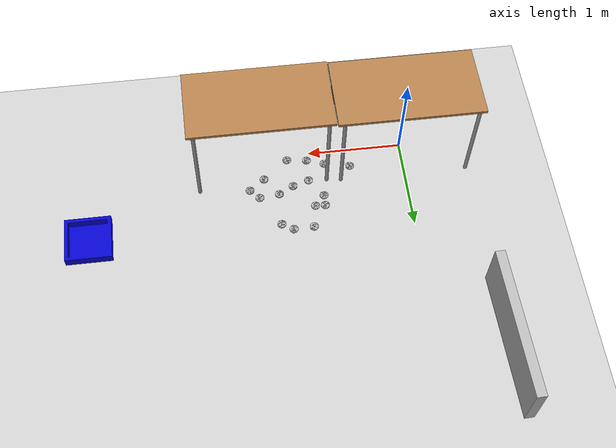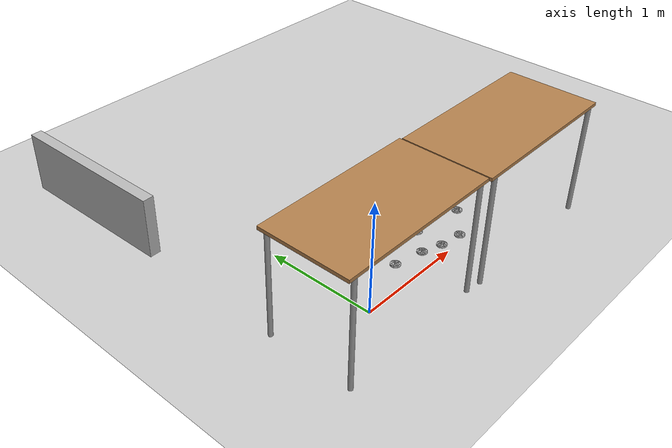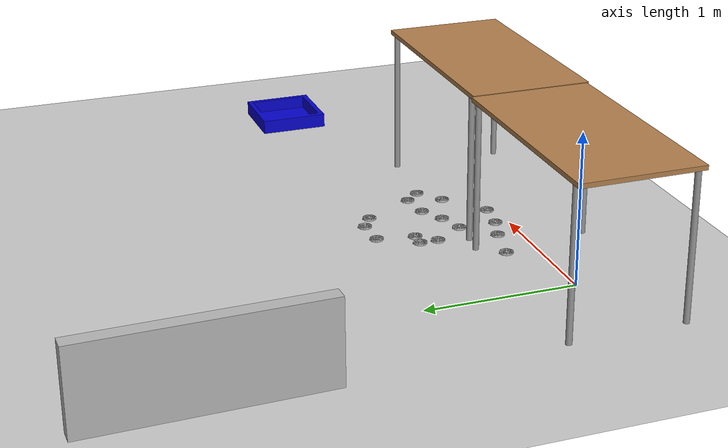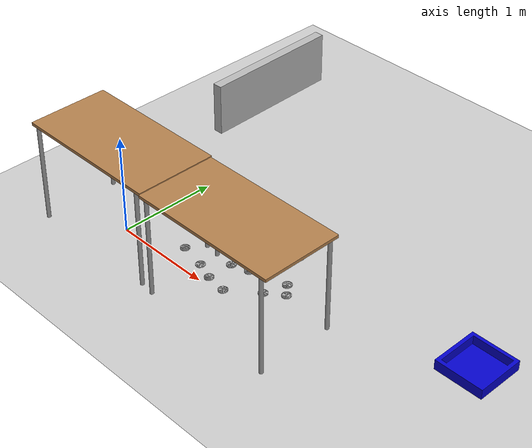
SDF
<sdf version="1.7">
 <world name="default">
  <model name="ground_plane">
   <static>1</static>
   <link name="link">
    <collision name="collision">
     <geometry><plane><normal>0 0 1</normal><size>100 100</size></plane></geometry>
     <surface>
      <contact><collide_bitmask>65535</collide_bitmask></contact>
      <friction><ode><mu>100</mu><mu2>50</mu2></ode></friction>
     </surface>
    </collision>
    <visual name="visual">
     <cast_shadows>0</cast_shadows>
     <geometry><plane><normal>0 0 1</normal><size>100 100</size></plane></geometry>
     <material>
      <script><uri>file://media/materials/scripts/gazebo.material</uri><name>Gazebo/Grey</name></script>
     </material>
    </visual>
   </link>
  </model>
  <model name="object_box">
   <pose>3.38607 0.850822 0 0 -0 0</pose>
   <static>1</static>
   <link name="object_box">
    <inertial>
     <mass>0.2</mass>
     <inertia><ixx>0.0005</ixx><ixy>0</ixy><ixz>0</ixz><iyy>0.0005</iyy><iyz>0</iyz><izz>0.0005</izz></inertia>
    </inertial>
    <collision name="collision">
     <geometry><mesh><uri>model://object_box/meshed/object_box_kai_kai.dae</uri></mesh></geometry>
    </collision>
    <visual name="visual">
     <geometry><mesh><uri>model://object_box/meshed/object_box_kai_kai.dae</uri></mesh></geometry>
    </visual>
   </link>
  </model>
  <model name="HV8_0">
   <pose>1.24148 0.059611 -3e-06 -0.000159 7.4e-05 0.001746</pose>
   <static>0</static>
   <link name="HV8">
    <inertial>
     <mass>0.05</mass>
     <inertia><ixx>0.0002</ixx><ixy>0</ixy><ixz>0</ixz><iyy>0.0002</iyy><iyz>0</iyz><izz>0.0002</izz></inertia>
    </inertial>
    <collision name="collishin">
     <geometry><mesh><uri>model://HV8/meshes/HV8_1.stl</uri></mesh></geometry>
    </collision>
    <visual name="visual"><geometry><mesh><uri>model://HV8/meshes/HV8_1.stl</uri></mesh></geometry></visual>
   </link>
  </model>
  <model name="HV8_3">
   <pose>1.03096 0.088448 -3e-06 -0.000159 7.4e-05 0.001744</pose>
   <static>0</static>
   <link name="HV8">
    <inertial>
     <mass>0.05</mass>
     <inertia><ixx>0.0002</ixx><ixy>0</ixy><ixz>0</ixz><iyy>0.0002</iyy><iyz>0</iyz><izz>0.0002</izz></inertia>
    </inertial>
    <collision name="collishin">
     <geometry><mesh><uri>model://HV8/meshes/HV8_1.stl</uri></mesh></geometry>
    </collision>
    <visual name="visual"><geometry><mesh><uri>model://HV8/meshes/HV8_1.stl</uri></mesh></geometry></visual>
   </link>
  </model>
  <model name="HV8_4">
   <pose>1.03894 0.34577 -3e-06 -0.000159 7.4e-05 0.001743</pose>
   <static>0</static>
   <link name="HV8">
    <inertial>
     <mass>0.05</mass>
     <inertia><ixx>0.0002</ixx><ixy>0</ixy><ixz>0</ixz><iyy>0.0002</iyy><iyz>0</iyz><izz>0.0002</izz></inertia>
    </inertial>
    <collision name="collishin">
     <geometry><mesh><uri>model://HV8/meshes/HV8_1.stl</uri></mesh></geometry>
    </collision>
    <visual name="visual"><geometry><mesh><uri>model://HV8/meshes/HV8_1.stl</uri></mesh></geometry></visual>
   </link>
  </model>
  <model name="HV8_5">
   <pose>1.21294 0.399554 -1.8e-05 0.000274 0.000329 0.001908</pose>
   <static>0</static>
   <link name="HV8">
    <inertial>
     <mass>0.05</mass>
     <inertia><ixx>0.0002</ixx><ixy>0</ixy><ixz>0</ixz><iyy>0.0002</iyy><iyz>0</iyz><izz>0.0002</izz></inertia>
    </inertial>
    <collision name="collishin">
     <geometry><mesh><uri>model://HV8/meshes/HV8_1.stl</uri></mesh></geometry>
    </collision>
    <visual name="visual"><geometry><mesh><uri>model://HV8/meshes/HV8_1.stl</uri></mesh></geometry></visual>
   </link>
  </model>
  <model name="HV8_6">
   <pose>1.00599 0.67169 -3e-06 -0.000159 7.4e-05 0.001906</pose>
   <static>0</static>
   <link name="HV8">
    <inertial>
     <mass>0.05</mass>
     <inertia><ixx>0.0002</ixx><ixy>0</ixy><ixz>0</ixz><iyy>0.0002</iyy><iyz>0</iyz><izz>0.0002</izz></inertia>
    </inertial>
    <collision name="collishin">
     <geometry><mesh><uri>model://HV8/meshes/HV8_1.stl</uri></mesh></geometry>
    </collision>
    <visual name="visual"><geometry><mesh><uri>model://HV8/meshes/HV8_1.stl</uri></mesh></geometry></visual>
   </link>
  </model>
  <model name="HV8_18">
   <pose>1.51384 0.279969 3e-06 -0.000164 -2.7e-05 0.001736</pose>
   <static>0</static>
   <link name="HV8">
    <inertial>
     <mass>0.05</mass>
     <inertia><ixx>0.0002</ixx><ixy>0</ixy><ixz>0</ixz><iyy>0.0002</iyy><iyz>0</iyz><izz>0.0002</izz></inertia>
    </inertial>
    <collision name="collishin">
     <geometry><mesh><uri>model://HV8/meshes/HV8_1.stl</uri></mesh></geometry>
    </collision>
    <visual name="visual"><geometry><mesh><uri>model://HV8/meshes/HV8_1.stl</uri></mesh></geometry></visual>
   </link>
  </model>
  <model name="HV8_19">
   <pose>1.38533 0.856674 -1.8e-05 0.000274 0.000329 0.001735</pose>
   <static>0</static>
   <link name="HV8">
    <inertial>
     <mass>0.05</mass>
     <inertia><ixx>0.0002</ixx><ixy>0</ixy><ixz>0</ixz><iyy>0.0002</iyy><iyz>0</iyz><izz>0.0002</izz></inertia>
    </inertial>
    <collision name="collishin">
     <geometry><mesh><uri>model://HV8/meshes/HV8_1.stl</uri></mesh></geometry>
    </collision>
    <visual name="visual"><geometry><mesh><uri>model://HV8/meshes/HV8_1.stl</uri></mesh></geometry></visual>
   </link>
  </model>
  <model name="HV8_20">
   <pose>0.899012 0.552527 -1.8e-05 0.000274 0.000329 0.001735</pose>
   <static>0</static>
   <link name="HV8">
    <inertial>
     <mass>0.05</mass>
     <inertia><ixx>0.0002</ixx><ixy>0</ixy><ixz>0</ixz><iyy>0.0002</iyy><iyz>0</iyz><izz>0.0002</izz></inertia>
    </inertial>
    <collision name="collishin">
     <geometry><mesh><uri>model://HV8/meshes/HV8_1.stl</uri></mesh></geometry>
    </collision>
    <visual name="visual"><geometry><mesh><uri>model://HV8/meshes/HV8_1.stl</uri></mesh></geometry></visual>
   </link>
  </model>
  <model name="HV8_21">
   <pose>0.901833 0.675184 -1.8e-05 0.000274 0.000329 0.001734</pose>
   <static>0</static>
   <link name="HV8">
    <inertial>
     <mass>0.05</mass>
     <inertia><ixx>0.0002</ixx><ixy>0</ixy><ixz>0</ixz><iyy>0.0002</iyy><iyz>0</iyz><izz>0.0002</izz></inertia>
    </inertial>
    <collision name="collishin">
     <geometry><mesh><uri>model://HV8/meshes/HV8_1.stl</uri></mesh></geometry>
    </collision>
    <visual name="visual"><geometry><mesh><uri>model://HV8/meshes/HV8_1.stl</uri></mesh></geometry></visual>
   </link>
  </model>
  <model name="HV8_22">
   <pose>1.05292 0.921952 3e-06 -0.000164 -2.7e-05 0.001734</pose>
   <static>0</static>
   <link name="HV8">
    <inertial>
     <mass>0.05</mass>
     <inertia><ixx>0.0002</ixx><ixy>0</ixy><ixz>0</ixz><iyy>0.0002</iyy><iyz>0</iyz><izz>0.0002</izz></inertia>
    </inertial>
    <collision name="collishin">
     <geometry><mesh><uri>model://HV8/meshes/HV8_1.stl</uri></mesh></geometry>
    </collision>
    <visual name="visual"><geometry><mesh><uri>model://HV8/meshes/HV8_1.stl</uri></mesh></geometry></visual>
   </link>
  </model>
  <model name="HV8_23">
   <pose>1.37036 0.483756 -3e-06 -0.000159 7.4e-05 0.002295</pose>
   <static>0</static>
   <link name="HV8">
    <inertial>
     <mass>0.05</mass>
     <inertia><ixx>0.0002</ixx><ixy>0</ixy><ixz>0</ixz><iyy>0.0002</iyy><iyz>0</iyz><izz>0.0002</izz></inertia>
    </inertial>
    <collision name="collishin">
     <geometry><mesh><uri>model://HV8/meshes/HV8_1.stl</uri></mesh></geometry>
    </collision>
    <visual name="visual"><geometry><mesh><uri>model://HV8/meshes/HV8_1.stl</uri></mesh></geometry></visual>
   </link>
  </model>
  <model name="HV8_24">
   <pose>1.67627 0.403834 -1.8e-05 0.000274 0.000329 0.001734</pose>
   <static>0</static>
   <link name="HV8">
    <inertial>
     <mass>0.05</mass>
     <inertia><ixx>0.0002</ixx><ixy>0</ixy><ixz>0</ixz><iyy>0.0002</iyy><iyz>0</iyz><izz>0.0002</izz></inertia>
    </inertial>
    <collision name="collishin">
     <geometry><mesh><uri>model://HV8/meshes/HV8_1.stl</uri></mesh></geometry>
    </collision>
    <visual name="visual"><geometry><mesh><uri>model://HV8/meshes/HV8_1.stl</uri></mesh></geometry></visual>
   </link>
  </model>
  <model name="HV8_25">
   <pose>1.58137 0.507516 -1.8e-05 0.000274 0.000329 0.001735</pose>
   <static>0</static>
   <link name="HV8">
    <inertial>
     <mass>0.05</mass>
     <inertia><ixx>0.0002</ixx><ixy>0</ixy><ixz>0</ixz><iyy>0.0002</iyy><iyz>0</iyz><izz>0.0002</izz></inertia>
    </inertial>
    <collision name="collishin">
     <geometry><mesh><uri>model://HV8/meshes/HV8_1.stl</uri></mesh></geometry>
    </collision>
    <visual name="visual"><geometry><mesh><uri>model://HV8/meshes/HV8_1.stl</uri></mesh></geometry></visual>
   </link>
  </model>
  <model name="HV8_29">
   <pose>0.845999 0.151459 -3e-06 -0.000159 7.4e-05 0.001733</pose>
   <static>0</static>
   <link name="HV8">
    <inertial>
     <mass>0.05</mass>
     <inertia><ixx>0.0002</ixx><ixy>0</ixy><ixz>0</ixz><iyy>0.0002</iyy><iyz>0</iyz><izz>0.0002</izz></inertia>
    </inertial>
    <collision name="collishin">
     <geometry><mesh><uri>model://HV8/meshes/HV8_1.stl</uri></mesh></geometry>
    </collision>
    <visual name="visual"><geometry><mesh><uri>model://HV8/meshes/HV8_1.stl</uri></mesh></geometry></visual>
   </link>
  </model>
  <model name="HV8_30">
   <pose>0.573048 0.210114 3e-06 -0.000164 -2.7e-05 0.001735</pose>
   <static>0</static>
   <link name="HV8">
    <inertial>
     <mass>0.05</mass>
     <inertia><ixx>0.0002</ixx><ixy>0</ixy><ixz>0</ixz><iyy>0.0002</iyy><iyz>0</iyz><izz>0.0002</izz></inertia>
    </inertial>
    <collision name="collishin">
     <geometry><mesh><uri>model://HV8/meshes/HV8_1.stl</uri></mesh></geometry>
    </collision>
    <visual name="visual"><geometry><mesh><uri>model://HV8/meshes/HV8_1.stl</uri></mesh></geometry></visual>
   </link>
  </model>
  <model name="HV8_31">
   <pose>1.26634 0.929085 -1.8e-05 0.000274 0.000329 0.001738</pose>
   <static>0</static>
   <link name="HV8">
    <inertial>
     <mass>0.05</mass>
     <inertia><ixx>0.0002</ixx><ixy>0</ixy><ixz>0</ixz><iyy>0.0002</iyy><iyz>0</iyz><izz>0.0002</izz></inertia>
    </inertial>
    <collision name="collishin">
     <geometry><mesh><uri>model://HV8/meshes/HV8_1.stl</uri></mesh></geometry>
    </collision>
    <visual name="visual"><geometry><mesh><uri>model://HV8/meshes/HV8_1.stl</uri></mesh></geometry></visual>
   </link>
  </model>
  <model name="t_pipe">
   <pose>-0.281011 0.161841 0.998563 0 -0 0</pose>
   <static>1</static>
   <link name="t_pipe">
    <inertial>
     <mass>0.2</mass>
     <inertia><ixx>0.0005</ixx><ixy>0</ixy><ixz>0</ixz><iyy>0.0005</iyy><iyz>0</iyz><izz>0.0005</izz></inertia>
    </inertial>
    <collision name="collishin">
     <geometry><mesh><uri>model://t_pipe/meshes/t_pipe_1.stl</uri></mesh></geometry>
    </collision>
    <visual name="visual"><geometry><mesh><uri>model://t_pipe/meshes/t_pipe_1.stl</uri></mesh></geometry></visual>
   </link>
  </model>
  <model name="table">
   <static>1</static>
   <link name="link">
    <collision name="surface">
     <pose>0 0 1 0 -0 0</pose>
     <geometry><box><size>1.5 0.8 0.03</size></box></geometry>
     <surface><friction><ode><mu>0.6</mu><mu2>0.6</mu2></ode></friction></surface>
    </collision>
    <visual name="visual1">
     <pose>0 0 1 0 -0 0</pose>
     <geometry><box><size>1.5 0.8 0.03</size></box></geometry>
     <material>
      <script><uri>file://media/materials/scripts/gazebo.material</uri><name>Gazebo/Wood</name></script>
     </material>
    </visual>
    <collision name="front_left_leg">
     <pose>0.68 0.38 0.5 0 -0 0</pose>
     <geometry><cylinder><radius>0.02</radius><length>1</length></cylinder></geometry>
    </collision>
    <visual name="front_left_leg">
     <pose>0.68 0.38 0.5 0 -0 0</pose>
     <geometry><cylinder><radius>0.02</radius><length>1</length></cylinder></geometry>
     <material>
      <script><uri>file://media/materials/scripts/gazebo.material</uri><name>Gazebo/Grey</name></script>
     </material>
    </visual>
    <collision name="front_right_leg">
     <pose>0.68 -0.38 0.5 0 -0 0</pose>
     <geometry><cylinder><radius>0.02</radius><length>1</length></cylinder></geometry>
    </collision>
    <visual name="front_right_leg">
     <pose>0.68 -0.38 0.5 0 -0 0</pose>
     <geometry><cylinder><radius>0.02</radius><length>1</length></cylinder></geometry>
     <material>
      <script><uri>file://media/materials/scripts/gazebo.material</uri><name>Gazebo/Grey</name></script>
     </material>
    </visual>
    <collision name="back_right_leg">
     <pose>-0.68 -0.38 0.5 0 -0 0</pose>
     <geometry><cylinder><radius>0.02</radius><length>1</length></cylinder></geometry>
    </collision>
    <visual name="back_right_leg">
     <pose>-0.68 -0.38 0.5 0 -0 0</pose>
     <geometry><cylinder><radius>0.02</radius><length>1</length></cylinder></geometry>
     <material>
      <script><uri>file://media/materials/scripts/gazebo.material</uri><name>Gazebo/Grey</name></script>
     </material>
    </visual>
    <collision name="back_left_leg">
     <pose>-0.68 0.38 0.5 0 -0 0</pose>
     <geometry><cylinder><radius>0.02</radius><length>1</length></cylinder></geometry>
    </collision>
    <visual name="back_left_leg">
     <pose>-0.68 0.38 0.5 0 -0 0</pose>
     <geometry><cylinder><radius>0.02</radius><length>1</length></cylinder></geometry>
     <material>
      <script><uri>file://media/materials/scripts/gazebo.material</uri><name>Gazebo/Grey</name></script>
     </material>
    </visual>
   </link>
   <pose>0.013767 -0.007946 0 0 -0 0</pose>
  </model>
  <model name="table_0">
   <static>1</static>
   <link name="link">
    <collision name="surface">
     <pose>0 0 1 0 -0 0</pose>
     <geometry><box><size>1.5 0.8 0.03</size></box></geometry>
     <surface><friction><ode><mu>0.6</mu><mu2>0.6</mu2></ode></friction></surface>
    </collision>
    <visual name="visual1">
     <pose>0 0 1 0 -0 0</pose>
     <geometry><box><size>1.5 0.8 0.03</size></box></geometry>
     <material>
      <script><uri>file://media/materials/scripts/gazebo.material</uri><name>Gazebo/Wood</name></script>
     </material>
    </visual>
    <collision name="front_left_leg">
     <pose>0.68 0.38 0.5 0 -0 0</pose>
     <geometry><cylinder><radius>0.02</radius><length>1</length></cylinder></geometry>
    </collision>
    <visual name="front_left_leg">
     <pose>0.68 0.38 0.5 0 -0 0</pose>
     <geometry><cylinder><radius>0.02</radius><length>1</length></cylinder></geometry>
     <material>
      <script><uri>file://media/materials/scripts/gazebo.material</uri><name>Gazebo/Grey</name></script>
     </material>
    </visual>
    <collision name="front_right_leg">
     <pose>0.68 -0.38 0.5 0 -0 0</pose>
     <geometry><cylinder><radius>0.02</radius><length>1</length></cylinder></geometry>
    </collision>
    <visual name="front_right_leg">
     <pose>0.68 -0.38 0.5 0 -0 0</pose>
     <geometry><cylinder><radius>0.02</radius><length>1</length></cylinder></geometry>
     <material>
      <script><uri>file://media/materials/scripts/gazebo.material</uri><name>Gazebo/Grey</name></script>
     </material>
    </visual>
    <collision name="back_right_leg">
     <pose>-0.68 -0.38 0.5 0 -0 0</pose>
     <geometry><cylinder><radius>0.02</radius><length>1</length></cylinder></geometry>
    </collision>
    <visual name="back_right_leg">
     <pose>-0.68 -0.38 0.5 0 -0 0</pose>
     <geometry><cylinder><radius>0.02</radius><length>1</length></cylinder></geometry>
     <material>
      <script><uri>file://media/materials/scripts/gazebo.material</uri><name>Gazebo/Grey</name></script>
     </material>
    </visual>
    <collision name="back_left_leg">
     <pose>-0.68 0.38 0.5 0 -0 0</pose>
     <geometry><cylinder><radius>0.02</radius><length>1</length></cylinder></geometry>
    </collision>
    <visual name="back_left_leg">
     <pose>-0.68 0.38 0.5 0 -0 0</pose>
     <geometry><cylinder><radius>0.02</radius><length>1</length></cylinder></geometry>
     <material>
      <script><uri>file://media/materials/scripts/gazebo.material</uri><name>Gazebo/Grey</name></script>
     </material>
    </visual>
   </link>
   <pose>1.52542 -0.025656 0 0 -0 0</pose>
  </model>
  <model name="collision_object">
   <pose>-0.659474 2.46466 0.274699 0.000404 -1.9e-05 0.024348</pose>
   <static>0</static>
   <link name="collision_object">
    <inertial>
     <mass>1</mass>
     <inertia><ixx>0.1</ixx><ixy>0</ixy><ixz>0</ixz><iyy>0.1</iyy><iyz>0</iyz><izz>0.1</izz></inertia>
    </inertial>
    <collision name="collision"><geometry><box><size>0.1 1.5 0.55</size></box></geometry></collision>
    <visual name="visual"><geometry><box><size>0.1 1.5 0.55</size></box></geometry></visual>
   </link>
  </model>
 </world>
</sdf>
